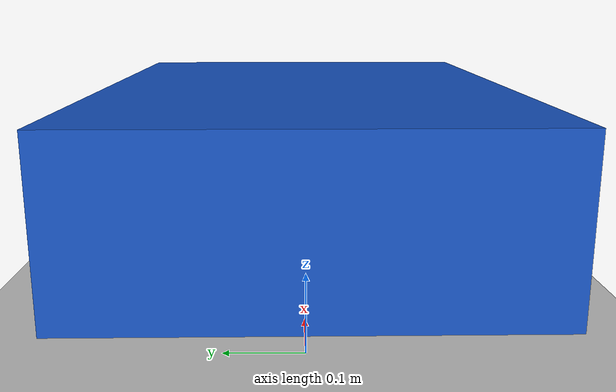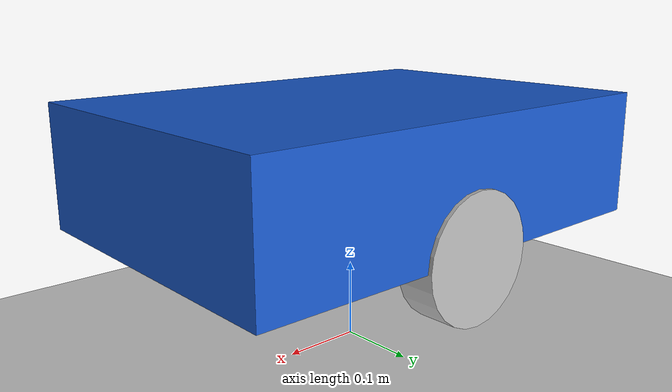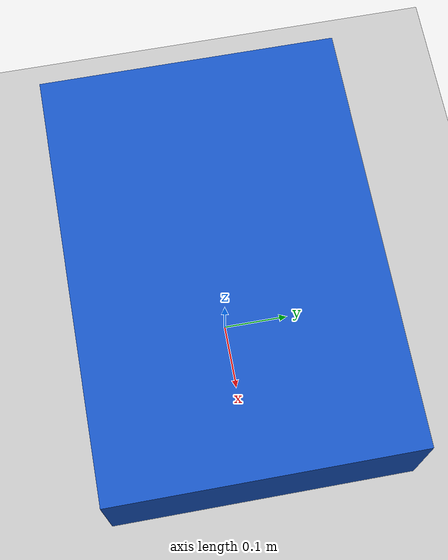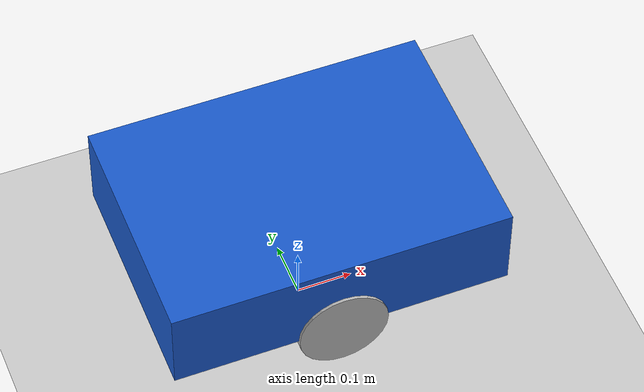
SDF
<?xml version="1.0"?>
<sdf version="1.10"><world name="warehouse_ros2_control"><gravity>0 0 -9.8</gravity><plugin filename="gz-sim-physics-system" name="gz::sim::systems::Physics"/><plugin filename="gz-sim-user-commands-system" name="gz::sim::systems::UserCommands"/><plugin filename="gz-sim-scene-broadcaster-system" name="gz::sim::systems::SceneBroadcaster"/><light type="directional" name="sun"><pose>0 0 10 0 0 0</pose></light><model name="ground"><static>true</static><link name="link"><collision name="collision"><geometry><plane><normal>0 0 1</normal><size>30 30</size></plane></geometry></collision><visual name="visual"><geometry><plane><normal>0 0 1</normal><size>30 30</size></plane></geometry></visual></link></model><include><uri>model://agv_ros2_control</uri><name>agv_ros2_control</name><pose>0 0 0.08 0 0 0</pose></include></world></sdf>

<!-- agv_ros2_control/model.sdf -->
<!-- M16-only model: gz_ros2_control owns wheel velocity commands. No native DiffDrive plugin is present. -->
<sdf version="1.10">
  <model name="agv_ros2_control">
    <link name="base_link"><pose>0 0 0.16 0 0 0</pose><inertial><mass>12.0</mass><inertia><ixx>0.20</ixx><iyy>0.40</iyy><izz>0.50</izz></inertia></inertial><visual name="body"><geometry><box><size>0.60 0.42 0.16</size></box></geometry><material><diffuse>0.10 0.35 0.80 1</diffuse></material></visual><collision name="body_collision"><geometry><box><size>0.60 0.42 0.16</size></box></geometry></collision></link>
    <link name="left_wheel_link"><pose relative_to="base_link">0 0.19 -0.08 1.5708 0 0</pose><inertial><mass>0.6</mass><inertia><ixx>0.002</ixx><iyy>0.002</iyy><izz>0.001</izz></inertia></inertial><visual name="wheel"><geometry><cylinder><radius>0.08</radius><length>0.05</length></cylinder></geometry></visual><collision name="collision"><geometry><cylinder><radius>0.08</radius><length>0.05</length></cylinder></geometry><surface><friction><ode><mu>1.0</mu><mu2>1.0</mu2></ode></friction></surface></collision></link>
    <link name="right_wheel_link"><pose relative_to="base_link">0 -0.19 -0.08 1.5708 0 0</pose><inertial><mass>0.6</mass><inertia><ixx>0.002</ixx><iyy>0.002</iyy><izz>0.001</izz></inertia></inertial><visual name="wheel"><geometry><cylinder><radius>0.08</radius><length>0.05</length></cylinder></geometry></visual><collision name="collision"><geometry><cylinder><radius>0.08</radius><length>0.05</length></cylinder></geometry><surface><friction><ode><mu>1.0</mu><mu2>1.0</mu2></ode></friction></surface></collision></link>
    <joint name="left_wheel_joint" type="revolute"><parent>base_link</parent><child>left_wheel_link</child><axis><xyz>0 1 0</xyz><limit><lower>-1e16</lower><upper>1e16</upper></limit></axis></joint>
    <joint name="right_wheel_joint" type="revolute"><parent>base_link</parent><child>right_wheel_link</child><axis><xyz>0 1 0</xyz><limit><lower>-1e16</lower><upper>1e16</upper></limit></axis></joint>
    <ros2_control name="GazeboSimSystem" type="system"><hardware><plugin>gz_ros2_control/GazeboSimSystem</plugin></hardware><joint name="left_wheel_joint"><command_interface name="velocity"><param name="min">-20</param><param name="max">20</param></command_interface><state_interface name="position"/><state_interface name="velocity"/></joint><joint name="right_wheel_joint"><command_interface name="velocity"><param name="min">-20</param><param name="max">20</param></command_interface><state_interface name="position"/><state_interface name="velocity"/></joint></ros2_control>
    <!-- The course workspace is fixed at ~/ros2_curri/agv_ws; run colcon build before this M16 launch. -->
    <plugin filename="libgz_ros2_control-system.so" name="gz_ros2_control::GazeboSimROS2ControlPlugin"><parameters>/home/lab4090/ros2_curri/agv_ws/install/agv_control/share/agv_control/config/controllers.yaml</parameters></plugin>
  </model>
</sdf>
